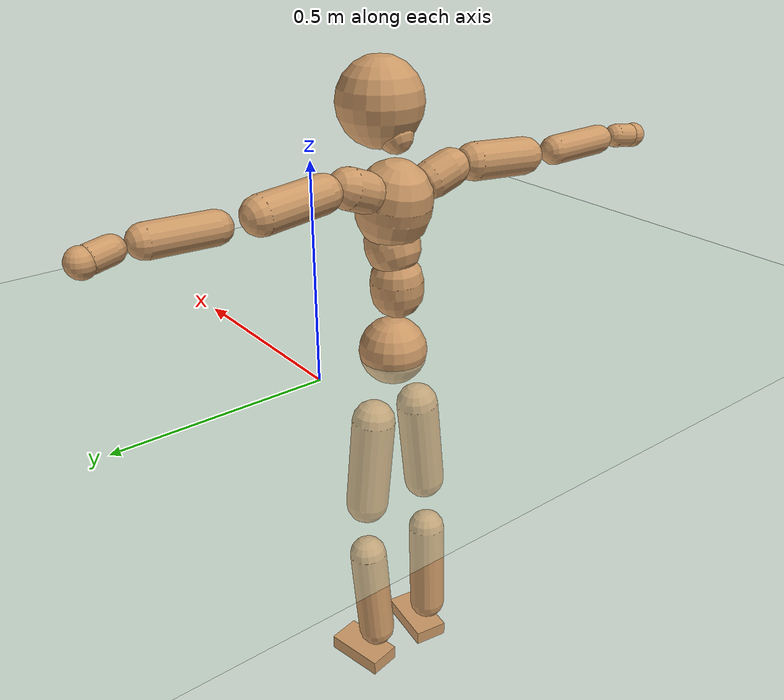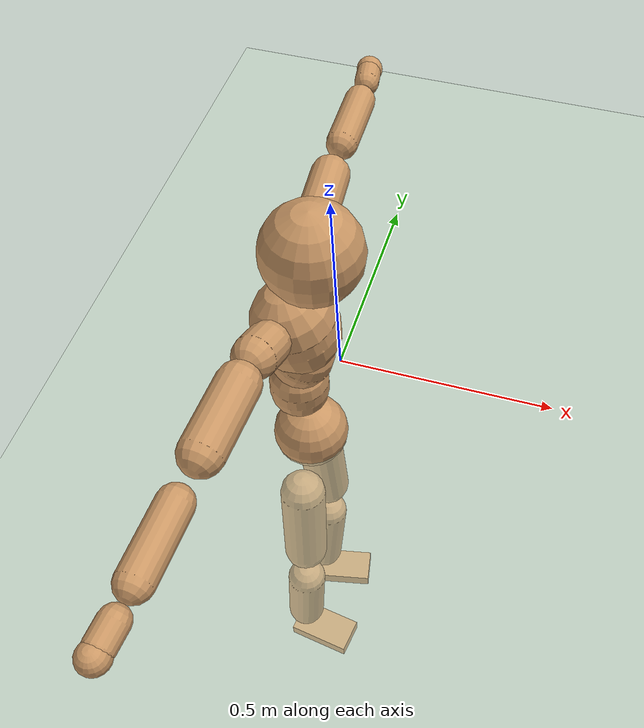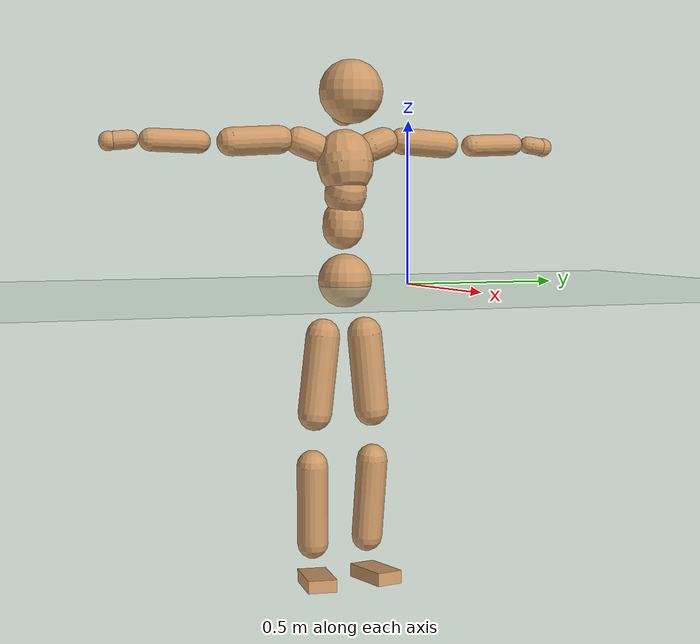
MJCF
<mujoco model="humanoid">
  <compiler coordinate="local" angle="radian"/>
  <default>
    <joint damping="0.0" armature="0.01" stiffness="0.0" limited="true"/>
    <geom conaffinity="1" condim="3" contype="7" margin="0.001" rgba="0.8 0.6 .4 1"/>
  </default>
  <asset>
    <texture type="skybox" builtin="gradient" rgb1=".4 .5 .6" rgb2="0 0 0" width="100" height="100"/>
    <texture builtin="flat" height="1278" mark="cross" markrgb="1 1 1" name="texgeom" random="0.01" rgb1="0.8 0.6 0.4" rgb2="0.8 0.6 0.4" type="cube" width="127"/>
    <texture builtin="checker" height="100" name="texplane" rgb1="0 0 0" rgb2="0.8 0.8 0.8" type="2d" width="100"/>
    <material name="MatPlane" reflectance="0.5" shininess="1" specular="1" texrepeat="60 60" texture="texplane"/>
    <material name="geom" texture="texgeom" texuniform="true"/>
  </asset>
  <worldbody>
    <light cutoff="100" diffuse="1 1 1" dir="-0 0 -1.3" directional="true" exponent="1" pos="0 0 1.3" specular=".1 .1 .1"/>
    <geom conaffinity="1" condim="3" name="floor" pos="0 0 0" rgba="0.8 0.9 0.8 1" size="100 100 .2" type="plane" material="MatPlane"/>
    <body name="Pelvis" pos="-0.0025 -0.208 0.0147">
      <freejoint name="Pelvis"/>
      <geom type="sphere" contype="1" conaffinity="1" density="500" size="0.0820" pos="0.0000 0.0000 0.0000" name="Pelvis"/>
      <body name="L_Hip" pos="-0.0134 0.0623 -0.0885">
        <joint name="L_Hip_x" type="hinge" pos="0 0 0" axis="1 0 0" stiffness="800" damping="80" armature="0.02" range="-180.0000 180.0000"/>
        <joint name="L_Hip_y" type="hinge" pos="0 0 0" axis="0 1 0" stiffness="800" damping="80" armature="0.02" range="-180.0000 180.0000"/>
        <joint name="L_Hip_z" type="hinge" pos="0 0 0" axis="0 0 1" stiffness="800" damping="80" armature="0.02" range="-180.0000 180.0000"/>
        <geom type="capsule" contype="1" conaffinity="1" density="500" fromto="0.0002 0.0077 -0.0779 0.0009 0.0309 -0.3116" size="0.053" name="L_Hip"/>
        <body name="L_Knee" pos="0.0011 0.0387 -0.3895">
          <joint name="L_Knee_x" type="hinge" pos="0 0 0" axis="1 0 0" stiffness="800" damping="80" armature="0.02" range="-180.0000 180.0000"/>
          <joint name="L_Knee_y" type="hinge" pos="0 0 0" axis="0 1 0" stiffness="800" damping="80" armature="0.02" range="-180.0000 180.0000"/>
          <joint name="L_Knee_z" type="hinge" pos="0 0 0" axis="0 0 1" stiffness="800" damping="80" armature="0.02" range="-180.0000 180.0000"/>
          <geom type="capsule" contype="1" conaffinity="1" density="500" fromto="-0.0078 -0.0024 -0.0817 -0.0314 -0.0096 -0.3269" size="0.0477" name="L_Knee"/>
          <body name="L_Ankle" pos="-0.0392 -0.012 -0.4086">
            <joint name="L_Ankle_x" type="hinge" pos="0 0 0" axis="1 0 0" stiffness="800" damping="80" armature="0.02" range="-180.0000 180.0000"/>
            <joint name="L_Ankle_y" type="hinge" pos="0 0 0" axis="0 1 0" stiffness="800" damping="80" armature="0.02" range="-180.0000 180.0000"/>
            <joint name="L_Ankle_z" type="hinge" pos="0 0 0" axis="0 0 1" stiffness="800" damping="80" armature="0.02" range="-180.0000 180.0000"/>
            <geom type="box" contype="1" conaffinity="1" density="500" pos="0.0573 0.0111 -0.0286" size="0.0793 0.0423 0.0203" quat="0.9954 0.0000 0.0000 0.0955" name="L_Ankle"/>
            <body name="L_Toe" pos="0.1146 0.0222 -0.0572">
              <joint name="L_Toe_x" type="hinge" pos="0 0 0" axis="1 0 0" stiffness="500" damping="50" armature="0.02" range="-180.0000 180.0000"/>
              <joint name="L_Toe_y" type="hinge" pos="0 0 0" axis="0 1 0" stiffness="500" damping="50" armature="0.02" range="-180.0000 180.0000"/>
              <joint name="L_Toe_z" type="hinge" pos="0 0 0" axis="0 0 1" stiffness="500" damping="50" armature="0.02" range="-180.0000 180.0000"/>
              <geom type="box" contype="1" conaffinity="1" density="500" pos="0.0000 0.0000 0.0290" size="0.0008 0.0021 0.001" quat="0.9948 0.0000 0.0000 0.1021" name="L_Toe"/>
            </body>
          </body>
        </body>
      </body>
      <body name="R_Hip" pos="-0.0091 -0.0601 -0.0874">
        <joint name="R_Hip_x" type="hinge" pos="0 0 0" axis="1 0 0" stiffness="800" damping="80" armature="0.02" range="-180.0000 180.0000"/>
        <joint name="R_Hip_y" type="hinge" pos="0 0 0" axis="0 1 0" stiffness="800" damping="80" armature="0.02" range="-180.0000 180.0000"/>
        <joint name="R_Hip_z" type="hinge" pos="0 0 0" axis="0 0 1" stiffness="800" damping="80" armature="0.02" range="-180.0000 180.0000"/>
        <geom type="capsule" contype="1" conaffinity="1" density="500" fromto="-0.0004 -0.0088 -0.0797 -0.0014 -0.0353 -0.3186" size="0.0521" name="R_Hip"/>
        <body name="R_Knee" pos="-0.0018 -0.0441 -0.3983">
          <joint name="R_Knee_x" type="hinge" pos="0 0 0" axis="1 0 0" stiffness="800" damping="80" armature="0.02" range="-180.0000 180.0000"/>
          <joint name="R_Knee_y" type="hinge" pos="0 0 0" axis="0 1 0" stiffness="800" damping="80" armature="0.02" range="-180.0000 180.0000"/>
          <joint name="R_Knee_z" type="hinge" pos="0 0 0" axis="0 0 1" stiffness="800" damping="80" armature="0.02" range="-180.0000 180.0000"/>
          <geom type="capsule" contype="1" conaffinity="1" density="500" fromto="-0.0073 0.0032 -0.0817 -0.0290 0.0127 -0.3267" size="0.0481" name="R_Knee"/>
          <body name="R_Ankle" pos="-0.0363 0.0159 -0.4084">
            <joint name="R_Ankle_x" type="hinge" pos="0 0 0" axis="1 0 0" stiffness="800" damping="80" armature="0.02" range="-180.0000 180.0000"/>
            <joint name="R_Ankle_y" type="hinge" pos="0 0 0" axis="0 1 0" stiffness="800" damping="80" armature="0.02" range="-180.0000 180.0000"/>
            <joint name="R_Ankle_z" type="hinge" pos="0 0 0" axis="0 0 1" stiffness="800" damping="80" armature="0.02" range="-180.0000 180.0000"/>
            <geom type="box" contype="1" conaffinity="1" density="500" pos="0.0588 -0.0089 -0.0239" size="0.0817 0.0446 0.0193" quat="0.9972 0.0000 0.0000 -0.0751" name="R_Ankle"/>
            <body name="R_Toe" pos="0.1175 -0.0178 -0.0479">
              <joint name="R_Toe_x" type="hinge" pos="0 0 0" axis="1 0 0" stiffness="500" damping="50" armature="0.02" range="-180.0000 180.0000"/>
              <joint name="R_Toe_y" type="hinge" pos="0 0 0" axis="0 1 0" stiffness="500" damping="50" armature="0.02" range="-180.0000 180.0000"/>
              <joint name="R_Toe_z" type="hinge" pos="0 0 0" axis="0 0 1" stiffness="500" damping="50" armature="0.02" range="-180.0000 180.0000"/>
              <geom type="box" contype="1" conaffinity="1" density="500" pos="0.0000 0.0000 0.0268" size="0.0008 0.0021 0.0011" quat="0.9978 0.0000 0.0000 -0.0657" name="R_Toe"/>
            </body>
          </body>
        </body>
      </body>
      <body name="Torso" pos="-0.0146 -0.0033 0.1012">
        <joint name="Torso_x" type="hinge" pos="0 0 0" axis="1 0 0" stiffness="1000" damping="100" armature="0.02" range="-180.0000 180.0000"/>
        <joint name="Torso_y" type="hinge" pos="0 0 0" axis="0 1 0" stiffness="1000" damping="100" armature="0.02" range="-180.0000 180.0000"/>
        <joint name="Torso_z" type="hinge" pos="0 0 0" axis="0 0 1" stiffness="1000" damping="100" armature="0.02" range="-180.0000 180.0000"/>
        <geom type="capsule" contype="1" conaffinity="1" density="500" fromto="0.0008 0.0031 0.0821 0.0006 0.0021 0.0548" size="0.062" name="Torso"/>
        <body name="Spine" pos="0.0014 0.0052 0.1369">
          <joint name="Spine_x" type="hinge" pos="0 0 0" axis="1 0 0" stiffness="1000" damping="100" armature="0.02" range="-180.0000 180.0000"/>
          <joint name="Spine_y" type="hinge" pos="0 0 0" axis="0 1 0" stiffness="1000" damping="100" armature="0.02" range="-180.0000 180.0000"/>
          <joint name="Spine_z" type="hinge" pos="0 0 0" axis="0 0 1" stiffness="1000" damping="100" armature="0.02" range="-180.0000 180.0000"/>
          <geom type="capsule" contype="1" conaffinity="1" density="500" fromto="0.0138 0.0011 0.0305 0.0092 0.0007 0.0204" size="0.0637" name="Spine"/>
          <body name="Chest" pos="0.023 0.0019 0.0509">
            <joint name="Chest_x" type="hinge" pos="0 0 0" axis="1 0 0" stiffness="1000" damping="100" armature="0.02" range="-180.0000 180.0000"/>
            <joint name="Chest_y" type="hinge" pos="0 0 0" axis="0 1 0" stiffness="1000" damping="100" armature="0.02" range="-180.0000 180.0000"/>
            <joint name="Chest_z" type="hinge" pos="0 0 0" axis="0 0 1" stiffness="1000" damping="100" armature="0.02" range="-180.0000 180.0000"/>
            <geom type="capsule" contype="1" conaffinity="1" density="500" fromto="-0.0196 -0.0015 0.0839 -0.0131 -0.0010 0.0559" size="0.0858" name="Chest"/>
            <body name="Neck" pos="-0.0306 -0.0052 0.2024">
              <joint name="Neck_x" type="hinge" pos="0 0 0" axis="1 0 0" stiffness="500" damping="50" armature="0.02" range="-180.0000 180.0000"/>
              <joint name="Neck_y" type="hinge" pos="0 0 0" axis="0 1 0" stiffness="500" damping="50" armature="0.02" range="-180.0000 180.0000"/>
              <joint name="Neck_z" type="hinge" pos="0 0 0" axis="0 0 1" stiffness="500" damping="50" armature="0.02" range="-180.0000 180.0000"/>
              <geom type="capsule" contype="1" conaffinity="1" density="500" fromto="0.0119 0.0011 0.0154 0.0475 0.0045 0.0615" size="0.039" name="Neck"/>
              <body name="Head" pos="0.0594 0.0057 0.0769">
                <joint name="Head_x" type="hinge" pos="0 0 0" axis="1 0 0" stiffness="500" damping="50" armature="0.02" range="-180.0000 180.0000"/>
                <joint name="Head_y" type="hinge" pos="0 0 0" axis="0 1 0" stiffness="500" damping="50" armature="0.02" range="-180.0000 180.0000"/>
                <joint name="Head_z" type="hinge" pos="0 0 0" axis="0 0 1" stiffness="500" damping="50" armature="0.02" range="-180.0000 180.0000"/>
                <geom type="sphere" contype="1" conaffinity="1" density="500" size="0.0967" pos="0.0000 0.0000 0.0000" name="Head"/>
              </body>
            </body>
            <body name="L_Thorax" pos="-0.0315 0.0704 0.1096">
              <joint name="L_Thorax_x" type="hinge" pos="0 0 0" axis="1 0 0" stiffness="500" damping="50" armature="0.02" range="-180.0000 180.0000"/>
              <joint name="L_Thorax_y" type="hinge" pos="0 0 0" axis="0 1 0" stiffness="500" damping="50" armature="0.02" range="-180.0000 180.0000"/>
              <joint name="L_Thorax_z" type="hinge" pos="0 0 0" axis="0 0 1" stiffness="500" damping="50" armature="0.02" range="-180.0000 180.0000"/>
              <geom type="capsule" contype="1" conaffinity="1" density="500" fromto="-0.0012 0.0158 0.0061 -0.0047 0.0631 0.0242" size="0.0449" name="L_Thorax"/>
              <body name="L_Shoulder" pos="-0.0059 0.0789 0.0303">
                <joint name="L_Shoulder_x" type="hinge" pos="0 0 0" axis="1 0 0" stiffness="500" damping="50" armature="0.02" range="-720.0000 720.0000"/>
                <joint name="L_Shoulder_y" type="hinge" pos="0 0 0" axis="0 1 0" stiffness="500" damping="50" armature="0.02" range="-720.0000 720.0000"/>
                <joint name="L_Shoulder_z" type="hinge" pos="0 0 0" axis="0 0 1" stiffness="500" damping="50" armature="0.02" range="-720.0000 720.0000"/>
                <geom type="capsule" contype="1" conaffinity="1" density="500" fromto="-0.0052 0.0511 -0.0030 -0.0209 0.2045 -0.0120" size="0.0417" name="L_Shoulder"/>
                <body name="L_Elbow" pos="-0.0262 0.2556 -0.015">
                  <joint name="L_Elbow_x" type="hinge" pos="0 0 0" axis="1 0 0" stiffness="500" damping="50" armature="0.02" range="-720.0000 720.0000"/>
                  <joint name="L_Elbow_y" type="hinge" pos="0 0 0" axis="0 1 0" stiffness="500" damping="50" armature="0.02" range="-720.0000 720.0000"/>
                  <joint name="L_Elbow_z" type="hinge" pos="0 0 0" axis="0 0 1" stiffness="500" damping="50" armature="0.02" range="-720.0000 720.0000"/>
                  <geom type="capsule" contype="1" conaffinity="1" density="500" fromto="-0.0006 0.0473 0.0019 -0.0025 0.1890 0.0074" size="0.034" name="L_Elbow"/>
                  <body name="L_Wrist" pos="-0.0032 0.2363 0.0093">
                    <joint name="L_Wrist_x" type="hinge" pos="0 0 0" axis="1 0 0" stiffness="300" damping="30" armature="0.02" range="-180.0000 180.0000"/>
                    <joint name="L_Wrist_y" type="hinge" pos="0 0 0" axis="0 1 0" stiffness="300" damping="30" armature="0.02" range="-180.0000 180.0000"/>
                    <joint name="L_Wrist_z" type="hinge" pos="0 0 0" axis="0 0 1" stiffness="300" damping="30" armature="0.02" range="-180.0000 180.0000"/>
                    <geom type="capsule" contype="1" conaffinity="1" density="500" fromto="-0.0025 0.0146 -0.0018 -0.0100 0.0585 -0.0073" size="0.0273" name="L_Wrist"/>
                    <body name="L_Hand" pos="-0.0124 0.0732 -0.0091">
                      <joint name="L_Hand_x" type="hinge" pos="0 0 0" axis="1 0 0" stiffness="300" damping="30" armature="0.02" range="-180.0000 180.0000"/>
                      <joint name="L_Hand_y" type="hinge" pos="0 0 0" axis="0 1 0" stiffness="300" damping="30" armature="0.02" range="-180.0000 180.0000"/>
                      <joint name="L_Hand_z" type="hinge" pos="0 0 0" axis="0 0 1" stiffness="300" damping="30" armature="0.02" range="-180.0000 180.0000"/>
                      <geom type="sphere" contype="1" conaffinity="1" density="500" size="0.0295" pos="0.0000 0.0000 0.0000" name="L_Hand"/>
                    </body>
                  </body>
                </body>
              </body>
            </body>
            <body name="R_Thorax" pos="-0.0358 -0.073 0.1074">
              <joint name="R_Thorax_x" type="hinge" pos="0 0 0" axis="1 0 0" stiffness="500" damping="50" armature="0.02" range="-180.0000 180.0000"/>
              <joint name="R_Thorax_y" type="hinge" pos="0 0 0" axis="0 1 0" stiffness="500" damping="50" armature="0.02" range="-180.0000 180.0000"/>
              <joint name="R_Thorax_z" type="hinge" pos="0 0 0" axis="0 0 1" stiffness="500" damping="50" armature="0.02" range="-180.0000 180.0000"/>
              <geom type="capsule" contype="1" conaffinity="1" density="500" fromto="-0.0017 -0.0162 0.0063 -0.0069 -0.0649 0.0252" size="0.0436" name="R_Thorax"/>
              <body name="R_Shoulder" pos="-0.0086 -0.0811 0.0315">
                <joint name="R_Shoulder_x" type="hinge" pos="0 0 0" axis="1 0 0" stiffness="500" damping="50" armature="0.02" range="-720.0000 720.0000"/>
                <joint name="R_Shoulder_y" type="hinge" pos="0 0 0" axis="0 1 0" stiffness="500" damping="50" armature="0.02" range="-720.0000 720.0000"/>
                <joint name="R_Shoulder_z" type="hinge" pos="0 0 0" axis="0 0 1" stiffness="500" damping="50" armature="0.02" range="-720.0000 720.0000"/>
                <geom type="capsule" contype="1" conaffinity="1" density="500" fromto="-0.0038 -0.0486 -0.0027 -0.0153 -0.1944 -0.0110" size="0.0433" name="R_Shoulder"/>
                <body name="R_Elbow" pos="-0.0192 -0.243 -0.0137">
                  <joint name="R_Elbow_x" type="hinge" pos="0 0 0" axis="1 0 0" stiffness="500" damping="50" armature="0.02" range="-720.0000 720.0000"/>
                  <joint name="R_Elbow_y" type="hinge" pos="0 0 0" axis="0 1 0" stiffness="500" damping="50" armature="0.02" range="-720.0000 720.0000"/>
                  <joint name="R_Elbow_z" type="hinge" pos="0 0 0" axis="0 0 1" stiffness="500" damping="50" armature="0.02" range="-720.0000 720.0000"/>
                  <geom type="capsule" contype="1" conaffinity="1" density="500" fromto="-0.0016 -0.0487 0.0014 -0.0062 -0.1947 0.0055" size="0.0344" name="R_Elbow"/>
                  <body name="R_Wrist" pos="-0.0078 -0.2434 0.0069">
                    <joint name="R_Wrist_x" type="hinge" pos="0 0 0" axis="1 0 0" stiffness="300" damping="30" armature="0.02" range="-180.0000 180.0000"/>
                    <joint name="R_Wrist_y" type="hinge" pos="0 0 0" axis="0 1 0" stiffness="300" damping="30" armature="0.02" range="-180.0000 180.0000"/>
                    <joint name="R_Wrist_z" type="hinge" pos="0 0 0" axis="0 0 1" stiffness="300" damping="30" armature="0.02" range="-180.0000 180.0000"/>
                    <geom type="capsule" contype="1" conaffinity="1" density="500" fromto="-0.0018 -0.0146 -0.0013 -0.0073 -0.0583 -0.0053" size="0.0278" name="R_Wrist"/>
                    <body name="R_Hand" pos="-0.0091 -0.0728 -0.0066">
                      <joint name="R_Hand_x" type="hinge" pos="0 0 0" axis="1 0 0" stiffness="300" damping="30" armature="0.02" range="-180.0000 180.0000"/>
                      <joint name="R_Hand_y" type="hinge" pos="0 0 0" axis="0 1 0" stiffness="300" damping="30" armature="0.02" range="-180.0000 180.0000"/>
                      <joint name="R_Hand_z" type="hinge" pos="0 0 0" axis="0 0 1" stiffness="300" damping="30" armature="0.02" range="-180.0000 180.0000"/>
                      <geom type="sphere" contype="1" conaffinity="1" density="500" size="0.0293" pos="0.0000 0.0000 0.0000" name="R_Hand"/>
                    </body>
                  </body>
                </body>
              </body>
            </body>
          </body>
        </body>
      </body>
    </body>
  </worldbody>
  <actuator>
    <motor name="L_Hip_x" joint="L_Hip_x" gear="500"/>
    <motor name="L_Hip_y" joint="L_Hip_y" gear="500"/>
    <motor name="L_Hip_z" joint="L_Hip_z" gear="500"/>
    <motor name="L_Knee_x" joint="L_Knee_x" gear="500"/>
    <motor name="L_Knee_y" joint="L_Knee_y" gear="500"/>
    <motor name="L_Knee_z" joint="L_Knee_z" gear="500"/>
    <motor name="L_Ankle_x" joint="L_Ankle_x" gear="500"/>
    <motor name="L_Ankle_y" joint="L_Ankle_y" gear="500"/>
    <motor name="L_Ankle_z" joint="L_Ankle_z" gear="500"/>
    <motor name="L_Toe_x" joint="L_Toe_x" gear="500"/>
    <motor name="L_Toe_y" joint="L_Toe_y" gear="500"/>
    <motor name="L_Toe_z" joint="L_Toe_z" gear="500"/>
    <motor name="R_Hip_x" joint="R_Hip_x" gear="500"/>
    <motor name="R_Hip_y" joint="R_Hip_y" gear="500"/>
    <motor name="R_Hip_z" joint="R_Hip_z" gear="500"/>
    <motor name="R_Knee_x" joint="R_Knee_x" gear="500"/>
    <motor name="R_Knee_y" joint="R_Knee_y" gear="500"/>
    <motor name="R_Knee_z" joint="R_Knee_z" gear="500"/>
    <motor name="R_Ankle_x" joint="R_Ankle_x" gear="500"/>
    <motor name="R_Ankle_y" joint="R_Ankle_y" gear="500"/>
    <motor name="R_Ankle_z" joint="R_Ankle_z" gear="500"/>
    <motor name="R_Toe_x" joint="R_Toe_x" gear="500"/>
    <motor name="R_Toe_y" joint="R_Toe_y" gear="500"/>
    <motor name="R_Toe_z" joint="R_Toe_z" gear="500"/>
    <motor name="Torso_x" joint="Torso_x" gear="500"/>
    <motor name="Torso_y" joint="Torso_y" gear="500"/>
    <motor name="Torso_z" joint="Torso_z" gear="500"/>
    <motor name="Spine_x" joint="Spine_x" gear="500"/>
    <motor name="Spine_y" joint="Spine_y" gear="500"/>
    <motor name="Spine_z" joint="Spine_z" gear="500"/>
    <motor name="Chest_x" joint="Chest_x" gear="500"/>
    <motor name="Chest_y" joint="Chest_y" gear="500"/>
    <motor name="Chest_z" joint="Chest_z" gear="500"/>
    <motor name="Neck_x" joint="Neck_x" gear="500"/>
    <motor name="Neck_y" joint="Neck_y" gear="500"/>
    <motor name="Neck_z" joint="Neck_z" gear="500"/>
    <motor name="Head_x" joint="Head_x" gear="500"/>
    <motor name="Head_y" joint="Head_y" gear="500"/>
    <motor name="Head_z" joint="Head_z" gear="500"/>
    <motor name="L_Thorax_x" joint="L_Thorax_x" gear="500"/>
    <motor name="L_Thorax_y" joint="L_Thorax_y" gear="500"/>
    <motor name="L_Thorax_z" joint="L_Thorax_z" gear="500"/>
    <motor name="L_Shoulder_x" joint="L_Shoulder_x" gear="500"/>
    <motor name="L_Shoulder_y" joint="L_Shoulder_y" gear="500"/>
    <motor name="L_Shoulder_z" joint="L_Shoulder_z" gear="500"/>
    <motor name="L_Elbow_x" joint="L_Elbow_x" gear="500"/>
    <motor name="L_Elbow_y" joint="L_Elbow_y" gear="500"/>
    <motor name="L_Elbow_z" joint="L_Elbow_z" gear="500"/>
    <motor name="L_Wrist_x" joint="L_Wrist_x" gear="500"/>
    <motor name="L_Wrist_y" joint="L_Wrist_y" gear="500"/>
    <motor name="L_Wrist_z" joint="L_Wrist_z" gear="500"/>
    <motor name="L_Hand_x" joint="L_Hand_x" gear="500"/>
    <motor name="L_Hand_y" joint="L_Hand_y" gear="500"/>
    <motor name="L_Hand_z" joint="L_Hand_z" gear="500"/>
    <motor name="R_Thorax_x" joint="R_Thorax_x" gear="500"/>
    <motor name="R_Thorax_y" joint="R_Thorax_y" gear="500"/>
    <motor name="R_Thorax_z" joint="R_Thorax_z" gear="500"/>
    <motor name="R_Shoulder_x" joint="R_Shoulder_x" gear="500"/>
    <motor name="R_Shoulder_y" joint="R_Shoulder_y" gear="500"/>
    <motor name="R_Shoulder_z" joint="R_Shoulder_z" gear="500"/>
    <motor name="R_Elbow_x" joint="R_Elbow_x" gear="500"/>
    <motor name="R_Elbow_y" joint="R_Elbow_y" gear="500"/>
    <motor name="R_Elbow_z" joint="R_Elbow_z" gear="500"/>
    <motor name="R_Wrist_x" joint="R_Wrist_x" gear="500"/>
    <motor name="R_Wrist_y" joint="R_Wrist_y" gear="500"/>
    <motor name="R_Wrist_z" joint="R_Wrist_z" gear="500"/>
    <motor name="R_Hand_x" joint="R_Hand_x" gear="500"/>
    <motor name="R_Hand_y" joint="R_Hand_y" gear="500"/>
    <motor name="R_Hand_z" joint="R_Hand_z" gear="500"/>
  </actuator>
  <contact>
    <exclude body1="Torso" body2="Chest"/>
    <exclude body1="Head" body2="Chest"/>
    <exclude body1="R_Knee" body2="R_Toe"/>
    <exclude body1="R_Knee" body2="L_Ankle"/>
    <exclude body1="R_Knee" body2="L_Toe"/>
    <exclude body1="L_Knee" body2="L_Toe"/>
    <exclude body1="L_Knee" body2="R_Ankle"/>
    <exclude body1="L_Knee" body2="R_Toe"/>
    <exclude body1="L_Shoulder" body2="Chest"/>
    <exclude body1="R_Shoulder" body2="Chest"/>
  </contact>
  <sensor/>
  <size njmax="700" nconmax="700"/>
</mujoco>
